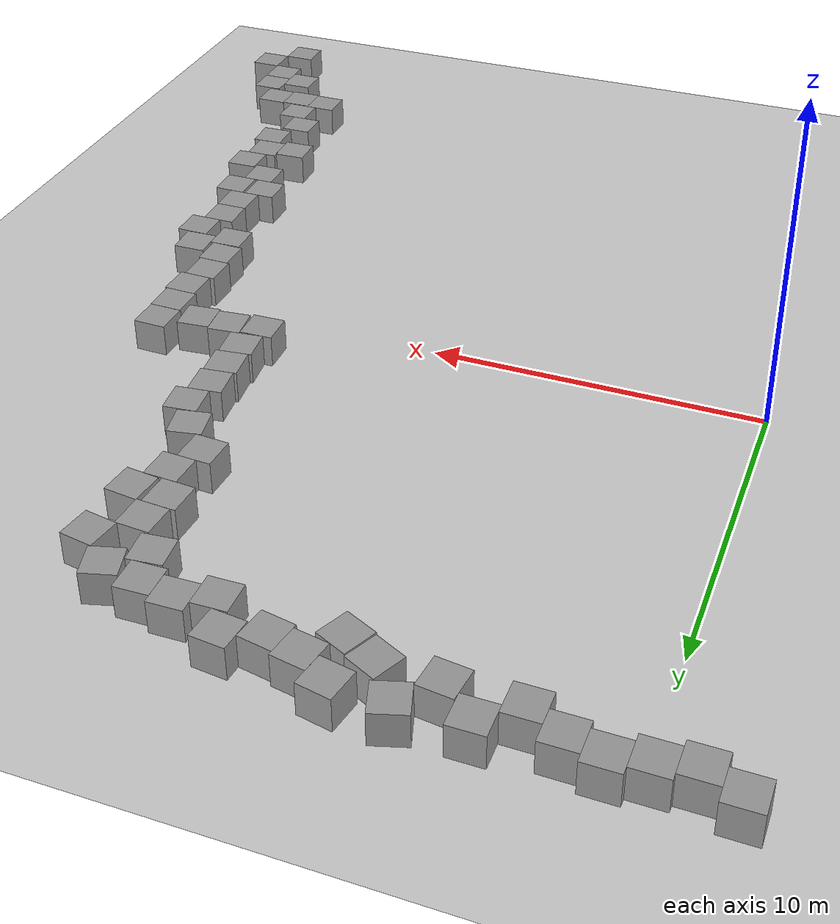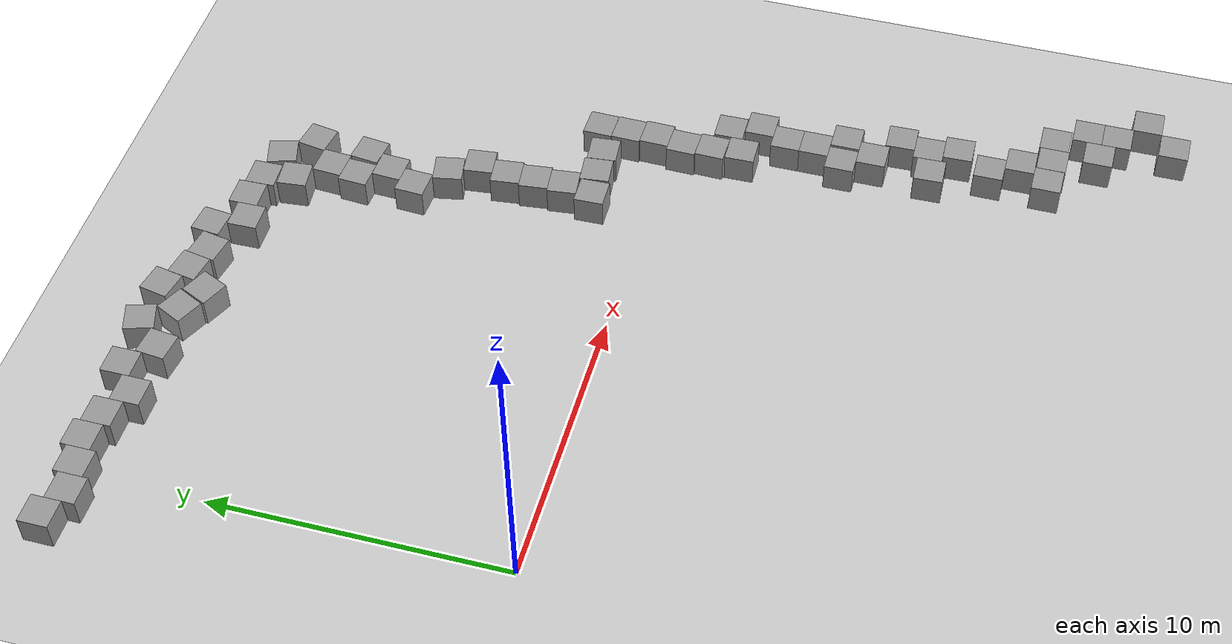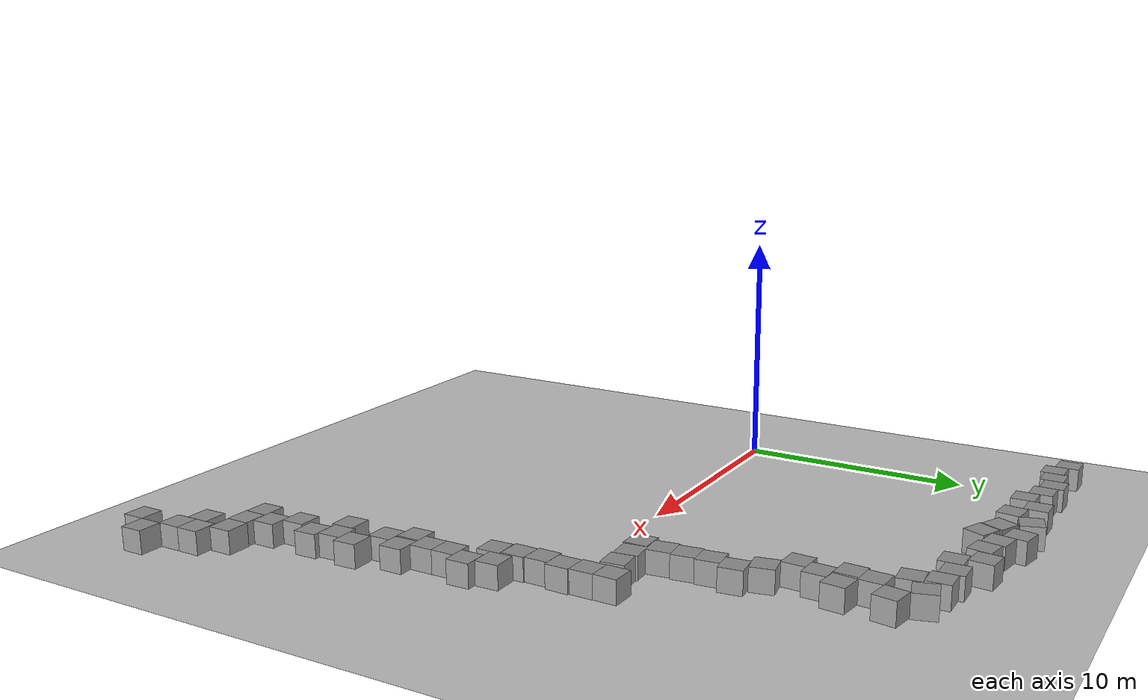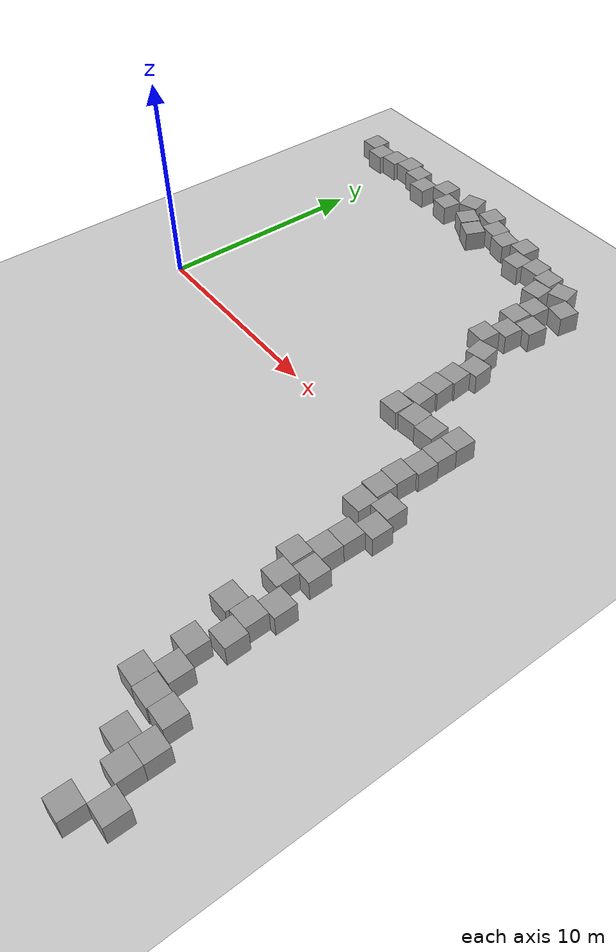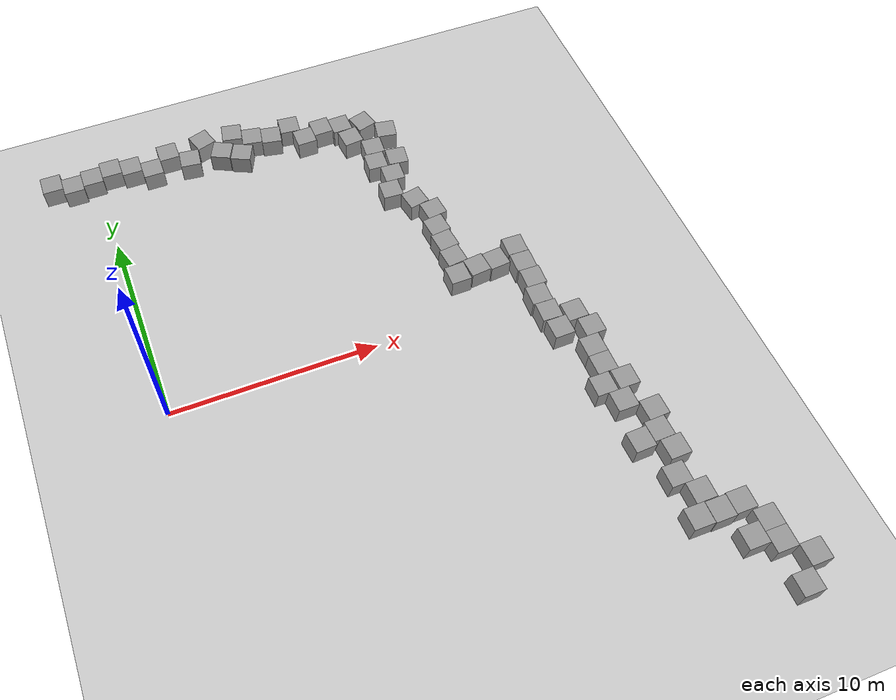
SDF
<sdf version="1.7">
 <world name="default">
  <model name="ground_plane">
   <static>1</static>
   <link name="link">
    <collision name="collision">
     <geometry><plane><normal>0 0 1</normal><size>100 100</size></plane></geometry>
     <surface>
      <contact><collide_bitmask>65535</collide_bitmask></contact>
      <friction><ode><mu>100</mu><mu2>50</mu2></ode></friction>
     </surface>
    </collision>
    <visual name="visual">
     <cast_shadows>0</cast_shadows>
     <geometry><plane><normal>0 0 1</normal><size>100 100</size></plane></geometry>
     <material>
      <script><uri>file://media/materials/scripts/gazebo.material</uri><name>Gazebo/Grey</name></script>
     </material>
    </visual>
   </link>
  </model>
  <model name="unit_box">
   <pose>8.14879 13.7403 0.5 0 0 -0.179137</pose>
   <link name="link">
    <inertial>
     <mass>1</mass>
     <inertia>
      <ixx>0.166667</ixx>
      <ixy>0</ixy>
      <ixz>0</ixz>
      <iyy>0.166667</iyy>
      <iyz>0</iyz>
      <izz>0.166667</izz>
     </inertia>
    </inertial>
    <collision name="collision"><geometry><box><size>1 1 1</size></box></geometry></collision>
    <visual name="visual">
     <geometry><box><size>1 1 1</size></box></geometry>
     <material>
      <script><name>Gazebo/Grey</name><uri>file://media/materials/scripts/gazebo.material</uri></script>
     </material>
    </visual>
   </link>
  </model>
  <model name="unit_box_clone">
   <pose>7.24066 14.3428 0.5 0 0 -0.192136</pose>
   <link name="link">
    <inertial>
     <mass>1</mass>
     <inertia>
      <ixx>0.166667</ixx>
      <ixy>0</ixy>
      <ixz>0</ixz>
      <iyy>0.166667</iyy>
      <iyz>0</iyz>
      <izz>0.166667</izz>
     </inertia>
    </inertial>
    <collision name="collision"><geometry><box><size>1 1 1</size></box></geometry></collision>
    <visual name="visual">
     <geometry><box><size>1 1 1</size></box></geometry>
     <material>
      <script><name>Gazebo/Grey</name><uri>file://media/materials/scripts/gazebo.material</uri></script>
     </material>
    </visual>
   </link>
  </model>
  <model name="unit_box_clone_0">
   <pose>7.3663 12.8762 0.5 0 0 -0.431474</pose>
   <link name="link">
    <inertial>
     <mass>1</mass>
     <inertia>
      <ixx>0.166667</ixx>
      <ixy>0</ixy>
      <ixz>0</ixz>
      <iyy>0.166667</iyy>
      <iyz>0</iyz>
      <izz>0.166667</izz>
     </inertia>
    </inertial>
    <collision name="collision"><geometry><box><size>1 1 1</size></box></geometry></collision>
    <visual name="visual">
     <geometry><box><size>1 1 1</size></box></geometry>
     <material>
      <script><name>Gazebo/Grey</name><uri>file://media/materials/scripts/gazebo.material</uri></script>
     </material>
    </visual>
   </link>
  </model>
  <model name="unit_box_clone_1">
   <pose>6.44568 13.3625 0.499996 -7e-06 0 -0.446602</pose>
   <link name="link">
    <inertial>
     <mass>1</mass>
     <inertia>
      <ixx>0.166667</ixx>
      <ixy>0</ixy>
      <ixz>0</ixz>
      <iyy>0.166667</iyy>
      <iyz>0</iyz>
      <izz>0.166667</izz>
     </inertia>
    </inertial>
    <collision name="collision"><geometry><box><size>1 1 1</size></box></geometry></collision>
    <visual name="visual">
     <geometry><box><size>1 1 1</size></box></geometry>
     <material>
      <script><name>Gazebo/Grey</name><uri>file://media/materials/scripts/gazebo.material</uri></script>
     </material>
    </visual>
   </link>
  </model>
  <model name="unit_box_clone_2">
   <pose>5.66448 14.4058 0.5 0 -0 0.299533</pose>
   <link name="link">
    <inertial>
     <mass>1</mass>
     <inertia>
      <ixx>0.166667</ixx>
      <ixy>0</ixy>
      <ixz>0</ixz>
      <iyy>0.166667</iyy>
      <iyz>0</iyz>
      <izz>0.166667</izz>
     </inertia>
    </inertial>
    <collision name="collision"><geometry><box><size>1 1 1</size></box></geometry></collision>
    <visual name="visual">
     <geometry><box><size>1 1 1</size></box></geometry>
     <material>
      <script><name>Gazebo/Grey</name><uri>file://media/materials/scripts/gazebo.material</uri></script>
     </material>
    </visual>
   </link>
  </model>
  <model name="unit_box_clone_3">
   <pose>3.79278 14.2378 0.5 0 -0 -0.002543</pose>
   <link name="link">
    <inertial>
     <mass>1</mass>
     <inertia>
      <ixx>0.166667</ixx>
      <ixy>0</ixy>
      <ixz>0</ixz>
      <iyy>0.166667</iyy>
      <iyz>0</iyz>
      <izz>0.166667</izz>
     </inertia>
    </inertial>
    <collision name="collision"><geometry><box><size>1 1 1</size></box></geometry></collision>
    <visual name="visual">
     <geometry><box><size>1 1 1</size></box></geometry>
     <material>
      <script><name>Gazebo/Grey</name><uri>file://media/materials/scripts/gazebo.material</uri></script>
     </material>
    </visual>
   </link>
  </model>
  <model name="unit_box_clone_4">
   <pose>4.75678 13.4144 0.499995 1e-05 -0 -0.118159</pose>
   <link name="link">
    <inertial>
     <mass>1</mass>
     <inertia>
      <ixx>0.166667</ixx>
      <ixy>0</ixy>
      <ixz>0</ixz>
      <iyy>0.166667</iyy>
      <iyz>0</iyz>
      <izz>0.166667</izz>
     </inertia>
    </inertial>
    <collision name="collision"><geometry><box><size>1 1 1</size></box></geometry></collision>
    <visual name="visual">
     <geometry><box><size>1 1 1</size></box></geometry>
     <material>
      <script><name>Gazebo/Grey</name><uri>file://media/materials/scripts/gazebo.material</uri></script>
     </material>
    </visual>
   </link>
  </model>
  <model name="unit_box_clone_5">
   <pose>1.79217 13.9851 0.5 -0 -0 -0.006324</pose>
   <link name="link">
    <inertial>
     <mass>1</mass>
     <inertia>
      <ixx>0.166667</ixx>
      <ixy>0</ixy>
      <ixz>0</ixz>
      <iyy>0.166667</iyy>
      <iyz>0</iyz>
      <izz>0.166667</izz>
     </inertia>
    </inertial>
    <collision name="collision"><geometry><box><size>1 1 1</size></box></geometry></collision>
    <visual name="visual">
     <geometry><box><size>1 1 1</size></box></geometry>
     <material>
      <script><name>Gazebo/Grey</name><uri>file://media/materials/scripts/gazebo.material</uri></script>
     </material>
    </visual>
   </link>
  </model>
  <model name="unit_box_clone_6">
   <pose>2.78953 13.4697 0.5 0 -0 -0.005146</pose>
   <link name="link">
    <inertial>
     <mass>1</mass>
     <inertia>
      <ixx>0.166667</ixx>
      <ixy>0</ixy>
      <ixz>0</ixz>
      <iyy>0.166667</iyy>
      <iyz>0</iyz>
      <izz>0.166667</izz>
     </inertia>
    </inertial>
    <collision name="collision"><geometry><box><size>1 1 1</size></box></geometry></collision>
    <visual name="visual">
     <geometry><box><size>1 1 1</size></box></geometry>
     <material>
      <script><name>Gazebo/Grey</name><uri>file://media/materials/scripts/gazebo.material</uri></script>
     </material>
    </visual>
   </link>
  </model>
  <model name="unit_box_clone_7">
   <pose>0.793579 14.2116 0.5 0 0 -0.006333</pose>
   <link name="link">
    <inertial>
     <mass>1</mass>
     <inertia>
      <ixx>0.166667</ixx>
      <ixy>0</ixy>
      <ixz>0</ixz>
      <iyy>0.166667</iyy>
      <iyz>0</iyz>
      <izz>0.166667</izz>
     </inertia>
    </inertial>
    <collision name="collision"><geometry><box><size>1 1 1</size></box></geometry></collision>
    <visual name="visual">
     <geometry><box><size>1 1 1</size></box></geometry>
     <material>
      <script><name>Gazebo/Grey</name><uri>file://media/materials/scripts/gazebo.material</uri></script>
     </material>
    </visual>
   </link>
  </model>
  <model name="unit_box_clone_8">
   <pose>-0.207819 13.9965 0.499995 -1e-05 -0 -0.006358</pose>
   <link name="link">
    <inertial>
     <mass>1</mass>
     <inertia>
      <ixx>0.166667</ixx>
      <ixy>0</ixy>
      <ixz>0</ixz>
      <iyy>0.166667</iyy>
      <iyz>0</iyz>
      <izz>0.166667</izz>
     </inertia>
    </inertial>
    <collision name="collision"><geometry><box><size>1 1 1</size></box></geometry></collision>
    <visual name="visual">
     <geometry><box><size>1 1 1</size></box></geometry>
     <material>
      <script><name>Gazebo/Grey</name><uri>file://media/materials/scripts/gazebo.material</uri></script>
     </material>
    </visual>
   </link>
  </model>
  <model name="unit_box_clone_9">
   <pose>-1.20904 13.8093 0.5 0 0 -0.006381</pose>
   <link name="link">
    <inertial>
     <mass>1</mass>
     <inertia>
      <ixx>0.166667</ixx>
      <ixy>0</ixy>
      <ixz>0</ixz>
      <iyy>0.166667</iyy>
      <iyz>0</iyz>
      <izz>0.166667</izz>
     </inertia>
    </inertial>
    <collision name="collision"><geometry><box><size>1 1 1</size></box></geometry></collision>
    <visual name="visual">
     <geometry><box><size>1 1 1</size></box></geometry>
     <material>
      <script><name>Gazebo/Grey</name><uri>file://media/materials/scripts/gazebo.material</uri></script>
     </material>
    </visual>
   </link>
  </model>
  <model name="unit_box_clone_10">
   <pose>-2.20641 14.2267 0.5 -0 -0 -0.006532</pose>
   <link name="link">
    <inertial>
     <mass>1</mass>
     <inertia>
      <ixx>0.166667</ixx>
      <ixy>0</ixy>
      <ixz>0</ixz>
      <iyy>0.166667</iyy>
      <iyz>0</iyz>
      <izz>0.166667</izz>
     </inertia>
    </inertial>
    <collision name="collision"><geometry><box><size>1 1 1</size></box></geometry></collision>
    <visual name="visual">
     <geometry><box><size>1 1 1</size></box></geometry>
     <material>
      <script><name>Gazebo/Grey</name><uri>file://media/materials/scripts/gazebo.material</uri></script>
     </material>
    </visual>
   </link>
  </model>
  <model name="unit_box_clone_24">
   <pose>9.11352 13.4557 0.499995 1e-05 0 -0.179137</pose>
   <link name="link">
    <inertial>
     <mass>1</mass>
     <inertia>
      <ixx>0.166667</ixx>
      <ixy>0</ixy>
      <ixz>0</ixz>
      <iyy>0.166667</iyy>
      <iyz>0</iyz>
      <izz>0.166667</izz>
     </inertia>
    </inertial>
    <collision name="collision"><geometry><box><size>1 1 1</size></box></geometry></collision>
    <visual name="visual">
     <geometry><box><size>1 1 1</size></box></geometry>
     <material>
      <script><name>Gazebo/Grey</name><uri>file://media/materials/scripts/gazebo.material</uri></script>
     </material>
    </visual>
   </link>
  </model>
  <model name="unit_box_clone_25">
   <pose>10.1901 13.7892 0.5 0 -0 -0.101922</pose>
   <link name="link">
    <inertial>
     <mass>1</mass>
     <inertia>
      <ixx>0.166667</ixx>
      <ixy>0</ixy>
      <ixz>0</ixz>
      <iyy>0.166667</iyy>
      <iyz>0</iyz>
      <izz>0.166667</izz>
     </inertia>
    </inertial>
    <collision name="collision"><geometry><box><size>1 1 1</size></box></geometry></collision>
    <visual name="visual">
     <geometry><box><size>1 1 1</size></box></geometry>
     <material>
      <script><name>Gazebo/Grey</name><uri>file://media/materials/scripts/gazebo.material</uri></script>
     </material>
    </visual>
   </link>
  </model>
  <model name="unit_box_clone_26">
   <pose>10.7298 12.742 0.5 0 -0 0.017382</pose>
   <link name="link">
    <inertial>
     <mass>1</mass>
     <inertia>
      <ixx>0.166667</ixx>
      <ixy>0</ixy>
      <ixz>0</ixz>
      <iyy>0.166667</iyy>
      <iyz>0</iyz>
      <izz>0.166667</izz>
     </inertia>
    </inertial>
    <collision name="collision"><geometry><box><size>1 1 1</size></box></geometry></collision>
    <visual name="visual">
     <geometry><box><size>1 1 1</size></box></geometry>
     <material>
      <script><name>Gazebo/Grey</name><uri>file://media/materials/scripts/gazebo.material</uri></script>
     </material>
    </visual>
   </link>
  </model>
  <model name="unit_box_clone_27">
   <pose>12.7296 12.8945 0.5 0 -0 0.021451</pose>
   <link name="link">
    <inertial>
     <mass>1</mass>
     <inertia>
      <ixx>0.166667</ixx>
      <ixy>0</ixy>
      <ixz>0</ixz>
      <iyy>0.166667</iyy>
      <iyz>0</iyz>
      <izz>0.166667</izz>
     </inertia>
    </inertial>
    <collision name="collision"><geometry><box><size>1 1 1</size></box></geometry></collision>
    <visual name="visual">
     <geometry><box><size>1 1 1</size></box></geometry>
     <material>
      <script><name>Gazebo/Grey</name><uri>file://media/materials/scripts/gazebo.material</uri></script>
     </material>
    </visual>
   </link>
  </model>
  <model name="unit_box_clone_28">
   <pose>11.724 13.0861 0.5 0 -0 0.017232</pose>
   <link name="link">
    <inertial>
     <mass>1</mass>
     <inertia>
      <ixx>0.166667</ixx>
      <ixy>0</ixy>
      <ixz>0</ixz>
      <iyy>0.166667</iyy>
      <iyz>0</iyz>
      <izz>0.166667</izz>
     </inertia>
    </inertial>
    <collision name="collision"><geometry><box><size>1 1 1</size></box></geometry></collision>
    <visual name="visual">
     <geometry><box><size>1 1 1</size></box></geometry>
     <material>
      <script><name>Gazebo/Grey</name><uri>file://media/materials/scripts/gazebo.material</uri></script>
     </material>
    </visual>
   </link>
  </model>
  <model name="unit_box_clone_29">
   <pose>12.966 11.8772 0.5 0 -0 0.094128</pose>
   <link name="link">
    <inertial>
     <mass>1</mass>
     <inertia>
      <ixx>0.166667</ixx>
      <ixy>0</ixy>
      <ixz>0</ixz>
      <iyy>0.166667</iyy>
      <iyz>0</iyz>
      <izz>0.166667</izz>
     </inertia>
    </inertial>
    <collision name="collision"><geometry><box><size>1 1 1</size></box></geometry></collision>
    <visual name="visual">
     <geometry><box><size>1 1 1</size></box></geometry>
     <material>
      <script><name>Gazebo/Grey</name><uri>file://media/materials/scripts/gazebo.material</uri></script>
     </material>
    </visual>
   </link>
  </model>
  <model name="unit_box_clone_30">
   <pose>13.8902 12.6714 0.5 0 -0 0.271597</pose>
   <link name="link">
    <inertial>
     <mass>1</mass>
     <inertia>
      <ixx>0.166667</ixx>
      <ixy>0</ixy>
      <ixz>0</ixz>
      <iyy>0.166667</iyy>
      <iyz>0</iyz>
      <izz>0.166667</izz>
     </inertia>
    </inertial>
    <collision name="collision"><geometry><box><size>1 1 1</size></box></geometry></collision>
    <visual name="visual">
     <geometry><box><size>1 1 1</size></box></geometry>
     <material>
      <script><name>Gazebo/Grey</name><uri>file://media/materials/scripts/gazebo.material</uri></script>
     </material>
    </visual>
   </link>
  </model>
  <model name="unit_box_clone_31">
   <pose>13.6101 9.84769 0.499995 0 1e-05 -0.060771</pose>
   <link name="link">
    <inertial>
     <mass>1</mass>
     <inertia>
      <ixx>0.166667</ixx>
      <ixy>0</ixy>
      <ixz>0</ixz>
      <iyy>0.166667</iyy>
      <iyz>0</iyz>
      <izz>0.166667</izz>
     </inertia>
    </inertial>
    <collision name="collision"><geometry><box><size>1 1 1</size></box></geometry></collision>
    <visual name="visual">
     <geometry><box><size>1 1 1</size></box></geometry>
     <material>
      <script><name>Gazebo/Grey</name><uri>file://media/materials/scripts/gazebo.material</uri></script>
     </material>
    </visual>
   </link>
  </model>
  <model name="unit_box_clone_32">
   <pose>14.8438 11.7274 0.5 0 0 -0.167872</pose>
   <link name="link">
    <inertial>
     <mass>1</mass>
     <inertia>
      <ixx>0.166667</ixx>
      <ixy>0</ixy>
      <ixz>0</ixz>
      <iyy>0.166667</iyy>
      <iyz>0</iyz>
      <izz>0.166667</izz>
     </inertia>
    </inertial>
    <collision name="collision"><geometry><box><size>1 1 1</size></box></geometry></collision>
    <visual name="visual">
     <geometry><box><size>1 1 1</size></box></geometry>
     <material>
      <script><name>Gazebo/Grey</name><uri>file://media/materials/scripts/gazebo.material</uri></script>
     </material>
    </visual>
   </link>
  </model>
  <model name="unit_box_clone_33">
   <pose>14.1345 8.81455 0.5 0 -0 -0.053428</pose>
   <link name="link">
    <inertial>
     <mass>1</mass>
     <inertia>
      <ixx>0.166667</ixx>
      <ixy>0</ixy>
      <ixz>0</ixz>
      <iyy>0.166667</iyy>
      <iyz>0</iyz>
      <izz>0.166667</izz>
     </inertia>
    </inertial>
    <collision name="collision"><geometry><box><size>1 1 1</size></box></geometry></collision>
    <visual name="visual">
     <geometry><box><size>1 1 1</size></box></geometry>
     <material>
      <script><name>Gazebo/Grey</name><uri>file://media/materials/scripts/gazebo.material</uri></script>
     </material>
    </visual>
   </link>
  </model>
  <model name="unit_box_clone_34">
   <pose>13.8112 10.8391 0.5 0 0 -0.065775</pose>
   <link name="link">
    <inertial>
     <mass>1</mass>
     <inertia>
      <ixx>0.166667</ixx>
      <ixy>0</ixy>
      <ixz>0</ixz>
      <iyy>0.166667</iyy>
      <iyz>0</iyz>
      <izz>0.166667</izz>
     </inertia>
    </inertial>
    <collision name="collision"><geometry><box><size>1 1 1</size></box></geometry></collision>
    <visual name="visual">
     <geometry><box><size>1 1 1</size></box></geometry>
     <material>
      <script><name>Gazebo/Grey</name><uri>file://media/materials/scripts/gazebo.material</uri></script>
     </material>
    </visual>
   </link>
  </model>
  <model name="unit_box_clone_35">
   <pose>14.7219 9.78393 0.499995 0 1e-05 -0.11977</pose>
   <link name="link">
    <inertial>
     <mass>1</mass>
     <inertia>
      <ixx>0.166667</ixx>
      <ixy>0</ixy>
      <ixz>0</ixz>
      <iyy>0.166667</iyy>
      <iyz>0</iyz>
      <izz>0.166667</izz>
     </inertia>
    </inertial>
    <collision name="collision"><geometry><box><size>1 1 1</size></box></geometry></collision>
    <visual name="visual">
     <geometry><box><size>1 1 1</size></box></geometry>
     <material>
      <script><name>Gazebo/Grey</name><uri>file://media/materials/scripts/gazebo.material</uri></script>
     </material>
    </visual>
   </link>
  </model>
  <model name="unit_box_clone_36">
   <pose>13.665 7.83823 0.5 0 0 -0.053429</pose>
   <link name="link">
    <inertial>
     <mass>1</mass>
     <inertia>
      <ixx>0.166667</ixx>
      <ixy>0</ixy>
      <ixz>0</ixz>
      <iyy>0.166667</iyy>
      <iyz>0</iyz>
      <izz>0.166667</izz>
     </inertia>
    </inertial>
    <collision name="collision"><geometry><box><size>1 1 1</size></box></geometry></collision>
    <visual name="visual">
     <geometry><box><size>1 1 1</size></box></geometry>
     <material>
      <script><name>Gazebo/Grey</name><uri>file://media/materials/scripts/gazebo.material</uri></script>
     </material>
    </visual>
   </link>
  </model>
  <model name="unit_box_clone_37">
   <pose>14.5828 6.88678 0.5 0 -0 0.184765</pose>
   <link name="link">
    <inertial>
     <mass>1</mass>
     <inertia>
      <ixx>0.166667</ixx>
      <ixy>0</ixy>
      <ixz>0</ixz>
      <iyy>0.166667</iyy>
      <iyz>0</iyz>
      <izz>0.166667</izz>
     </inertia>
    </inertial>
    <collision name="collision"><geometry><box><size>1 1 1</size></box></geometry></collision>
    <visual name="visual">
     <geometry><box><size>1 1 1</size></box></geometry>
     <material>
      <script><name>Gazebo/Grey</name><uri>file://media/materials/scripts/gazebo.material</uri></script>
     </material>
    </visual>
   </link>
  </model>
  <model name="unit_box_clone_38">
   <pose>15.1783 5.9445 0.499995 0 -1e-05 0.110683</pose>
   <link name="link">
    <inertial>
     <mass>1</mass>
     <inertia>
      <ixx>0.166667</ixx>
      <ixy>0</ixy>
      <ixz>0</ixz>
      <iyy>0.166667</iyy>
      <iyz>0</iyz>
      <izz>0.166667</izz>
     </inertia>
    </inertial>
    <collision name="collision"><geometry><box><size>1 1 1</size></box></geometry></collision>
    <visual name="visual">
     <geometry><box><size>1 1 1</size></box></geometry>
     <material>
      <script><name>Gazebo/Grey</name><uri>file://media/materials/scripts/gazebo.material</uri></script>
     </material>
    </visual>
   </link>
  </model>
  <model name="unit_box_clone_39">
   <pose>14.9446 4.91207 0.5 0 -0 0.10889</pose>
   <link name="link">
    <inertial>
     <mass>1</mass>
     <inertia>
      <ixx>0.166667</ixx>
      <ixy>0</ixy>
      <ixz>0</ixz>
      <iyy>0.166667</iyy>
      <iyz>0</iyz>
      <izz>0.166667</izz>
     </inertia>
    </inertial>
    <collision name="collision"><geometry><box><size>1 1 1</size></box></geometry></collision>
    <visual name="visual">
     <geometry><box><size>1 1 1</size></box></geometry>
     <material>
      <script><name>Gazebo/Grey</name><uri>file://media/materials/scripts/gazebo.material</uri></script>
     </material>
    </visual>
   </link>
  </model>
  <model name="unit_box_clone_40">
   <pose>14.9689 3.90877 0.499995 0 -1e-05 0.10889</pose>
   <link name="link">
    <inertial>
     <mass>1</mass>
     <inertia>
      <ixx>0.166667</ixx>
      <ixy>0</ixy>
      <ixz>0</ixz>
      <iyy>0.166667</iyy>
      <iyz>0</iyz>
      <izz>0.166667</izz>
     </inertia>
    </inertial>
    <collision name="collision"><geometry><box><size>1 1 1</size></box></geometry></collision>
    <visual name="visual">
     <geometry><box><size>1 1 1</size></box></geometry>
     <material>
      <script><name>Gazebo/Grey</name><uri>file://media/materials/scripts/gazebo.material</uri></script>
     </material>
    </visual>
   </link>
  </model>
  <model name="unit_box_clone_41">
   <pose>14.9918 2.90528 0.5 0 -0 0.108931</pose>
   <link name="link">
    <inertial>
     <mass>1</mass>
     <inertia>
      <ixx>0.166667</ixx>
      <ixy>0</ixy>
      <ixz>0</ixz>
      <iyy>0.166667</iyy>
      <iyz>0</iyz>
      <izz>0.166667</izz>
     </inertia>
    </inertial>
    <collision name="collision"><geometry><box><size>1 1 1</size></box></geometry></collision>
    <visual name="visual">
     <geometry><box><size>1 1 1</size></box></geometry>
     <material>
      <script><name>Gazebo/Grey</name><uri>file://media/materials/scripts/gazebo.material</uri></script>
     </material>
    </visual>
   </link>
  </model>
  <model name="unit_box_clone_42">
   <pose>14.7959 1.85876 0.5 0 -0 0.020394</pose>
   <link name="link">
    <inertial>
     <mass>1</mass>
     <inertia>
      <ixx>0.166667</ixx>
      <ixy>0</ixy>
      <ixz>0</ixz>
      <iyy>0.166667</iyy>
      <iyz>0</iyz>
      <izz>0.166667</izz>
     </inertia>
    </inertial>
    <collision name="collision"><geometry><box><size>1 1 1</size></box></geometry></collision>
    <visual name="visual">
     <geometry><box><size>1 1 1</size></box></geometry>
     <material>
      <script><name>Gazebo/Grey</name><uri>file://media/materials/scripts/gazebo.material</uri></script>
     </material>
    </visual>
   </link>
  </model>
  <model name="unit_box_clone_43">
   <pose>16.8387 2.00716 0.5 0 -0 0.09071</pose>
   <link name="link">
    <inertial>
     <mass>1</mass>
     <inertia>
      <ixx>0.166667</ixx>
      <ixy>0</ixy>
      <ixz>0</ixz>
      <iyy>0.166667</iyy>
      <iyz>0</iyz>
      <izz>0.166667</izz>
     </inertia>
    </inertial>
    <collision name="collision"><geometry><box><size>1 1 1</size></box></geometry></collision>
    <visual name="visual">
     <geometry><box><size>1 1 1</size></box></geometry>
     <material>
      <script><name>Gazebo/Grey</name><uri>file://media/materials/scripts/gazebo.material</uri></script>
     </material>
    </visual>
   </link>
  </model>
  <model name="unit_box_clone_44">
   <pose>15.8323 1.98629 0.5 0 -0 0.099098</pose>
   <link name="link">
    <inertial>
     <mass>1</mass>
     <inertia>
      <ixx>0.166667</ixx>
      <ixy>0</ixy>
      <ixz>0</ixz>
      <iyy>0.166667</iyy>
      <iyz>0</iyz>
      <izz>0.166667</izz>
     </inertia>
    </inertial>
    <collision name="collision"><geometry><box><size>1 1 1</size></box></geometry></collision>
    <visual name="visual">
     <geometry><box><size>1 1 1</size></box></geometry>
     <material>
      <script><name>Gazebo/Grey</name><uri>file://media/materials/scripts/gazebo.material</uri></script>
     </material>
    </visual>
   </link>
  </model>
  <model name="unit_box_clone_45">
   <pose>18.0081 2.42665 0.5 0 0 -0.026177</pose>
   <link name="link">
    <inertial>
     <mass>1</mass>
     <inertia>
      <ixx>0.166667</ixx>
      <ixy>0</ixy>
      <ixz>0</ixz>
      <iyy>0.166667</iyy>
      <iyz>0</iyz>
      <izz>0.166667</izz>
     </inertia>
    </inertial>
    <collision name="collision"><geometry><box><size>1 1 1</size></box></geometry></collision>
    <visual name="visual">
     <geometry><box><size>1 1 1</size></box></geometry>
     <material>
      <script><name>Gazebo/Grey</name><uri>file://media/materials/scripts/gazebo.material</uri></script>
     </material>
    </visual>
   </link>
  </model>
  <model name="unit_box_clone_46">
   <pose>18.0055 1.42428 0.5 0 -0 -0.025157</pose>
   <link name="link">
    <inertial>
     <mass>1</mass>
     <inertia>
      <ixx>0.166667</ixx>
      <ixy>0</ixy>
      <ixz>0</ixz>
      <iyy>0.166667</iyy>
      <iyz>0</iyz>
      <izz>0.166667</izz>
     </inertia>
    </inertial>
    <collision name="collision"><geometry><box><size>1 1 1</size></box></geometry></collision>
    <visual name="visual">
     <geometry><box><size>1 1 1</size></box></geometry>
     <material>
      <script><name>Gazebo/Grey</name><uri>file://media/materials/scripts/gazebo.material</uri></script>
     </material>
    </visual>
   </link>
  </model>
  <model name="unit_box_clone_47">
   <pose>18.0513 0.422691 0.5 0 -0 -0.025369</pose>
   <link name="link">
    <inertial>
     <mass>1</mass>
     <inertia>
      <ixx>0.166667</ixx>
      <ixy>0</ixy>
      <ixz>0</ixz>
      <iyy>0.166667</iyy>
      <iyz>0</iyz>
      <izz>0.166667</izz>
     </inertia>
    </inertial>
    <collision name="collision"><geometry><box><size>1 1 1</size></box></geometry></collision>
    <visual name="visual">
     <geometry><box><size>1 1 1</size></box></geometry>
     <material>
      <script><name>Gazebo/Grey</name><uri>file://media/materials/scripts/gazebo.material</uri></script>
     </material>
    </visual>
   </link>
  </model>
  <model name="unit_box_clone_48">
   <pose>18.0494 -2.59629 0.5 0 -0 0.017199</pose>
   <link name="link">
    <inertial>
     <mass>1</mass>
     <inertia>
      <ixx>0.166667</ixx>
      <ixy>0</ixy>
      <ixz>0</ixz>
      <iyy>0.166667</iyy>
      <iyz>0</iyz>
      <izz>0.166667</izz>
     </inertia>
    </inertial>
    <collision name="collision"><geometry><box><size>1 1 1</size></box></geometry></collision>
    <visual name="visual">
     <geometry><box><size>1 1 1</size></box></geometry>
     <material>
      <script><name>Gazebo/Grey</name><uri>file://media/materials/scripts/gazebo.material</uri></script>
     </material>
    </visual>
   </link>
  </model>
  <model name="unit_box_clone_49">
   <pose>17.8873 -0.574183 0.5 0 0 -0.025239</pose>
   <link name="link">
    <inertial>
     <mass>1</mass>
     <inertia>
      <ixx>0.166667</ixx>
      <ixy>0</ixy>
      <ixz>0</ixz>
      <iyy>0.166667</iyy>
      <iyz>0</iyz>
      <izz>0.166667</izz>
     </inertia>
    </inertial>
    <collision name="collision"><geometry><box><size>1 1 1</size></box></geometry></collision>
    <visual name="visual">
     <geometry><box><size>1 1 1</size></box></geometry>
     <material>
      <script><name>Gazebo/Grey</name><uri>file://media/materials/scripts/gazebo.material</uri></script>
     </material>
    </visual>
   </link>
  </model>
  <model name="unit_box_clone_50">
   <pose>17.9375 -1.57696 0.5 -0 -0 -0.024718</pose>
   <link name="link">
    <inertial>
     <mass>1</mass>
     <inertia>
      <ixx>0.166667</ixx>
      <ixy>0</ixy>
      <ixz>0</ixz>
      <iyy>0.166667</iyy>
      <iyz>0</iyz>
      <izz>0.166667</izz>
     </inertia>
    </inertial>
    <collision name="collision"><geometry><box><size>1 1 1</size></box></geometry></collision>
    <visual name="visual">
     <geometry><box><size>1 1 1</size></box></geometry>
     <material>
      <script><name>Gazebo/Grey</name><uri>file://media/materials/scripts/gazebo.material</uri></script>
     </material>
    </visual>
   </link>
  </model>
  <model name="unit_box_clone_51">
   <pose>19.0395 -1.9857 0.5 0 -0 0.017213</pose>
   <link name="link">
    <inertial>
     <mass>1</mass>
     <inertia>
      <ixx>0.166667</ixx>
      <ixy>0</ixy>
      <ixz>0</ixz>
      <iyy>0.166667</iyy>
      <iyz>0</iyz>
      <izz>0.166667</izz>
     </inertia>
    </inertial>
    <collision name="collision"><geometry><box><size>1 1 1</size></box></geometry></collision>
    <visual name="visual">
     <geometry><box><size>1 1 1</size></box></geometry>
     <material>
      <script><name>Gazebo/Grey</name><uri>file://media/materials/scripts/gazebo.material</uri></script>
     </material>
    </visual>
   </link>
  </model>
  <model name="unit_box_clone_52">
   <pose>19.4313 -2.99999 0.5 -0 -0 -3e-06</pose>
   <link name="link">
    <inertial>
     <mass>1</mass>
     <inertia>
      <ixx>0.166667</ixx>
      <ixy>0</ixy>
      <ixz>0</ixz>
      <iyy>0.166667</iyy>
      <iyz>0</iyz>
      <izz>0.166667</izz>
     </inertia>
    </inertial>
    <collision name="collision"><geometry><box><size>1 1 1</size></box></geometry></collision>
    <visual name="visual">
     <geometry><box><size>1 1 1</size></box></geometry>
     <material>
      <script><name>Gazebo/Grey</name><uri>file://media/materials/scripts/gazebo.material</uri></script>
     </material>
    </visual>
   </link>
  </model>
  <model name="unit_box_clone_53">
   <pose>19 -4.99999 0.5 -0 -0 -0</pose>
   <link name="link">
    <inertial>
     <mass>1</mass>
     <inertia>
      <ixx>0.166667</ixx>
      <ixy>0</ixy>
      <ixz>0</ixz>
      <iyy>0.166667</iyy>
      <iyz>0</iyz>
      <izz>0.166667</izz>
     </inertia>
    </inertial>
    <collision name="collision"><geometry><box><size>1 1 1</size></box></geometry></collision>
    <visual name="visual">
     <geometry><box><size>1 1 1</size></box></geometry>
     <material>
      <script><name>Gazebo/Grey</name><uri>file://media/materials/scripts/gazebo.material</uri></script>
     </material>
    </visual>
   </link>
  </model>
  <model name="unit_box_clone_54">
   <pose>19 -7 0.5 -0 -0 -1.4e-05</pose>
   <link name="link">
    <inertial>
     <mass>1</mass>
     <inertia>
      <ixx>0.166667</ixx>
      <ixy>0</ixy>
      <ixz>0</ixz>
      <iyy>0.166667</iyy>
      <iyz>0</iyz>
      <izz>0.166667</izz>
     </inertia>
    </inertial>
    <collision name="collision"><geometry><box><size>1 1 1</size></box></geometry></collision>
    <visual name="visual">
     <geometry><box><size>1 1 1</size></box></geometry>
     <material>
      <script><name>Gazebo/Grey</name><uri>file://media/materials/scripts/gazebo.material</uri></script>
     </material>
    </visual>
   </link>
  </model>
  <model name="unit_box_clone_55">
   <pose>20.0491 -7.83142 0.5 0 -0 0.026992</pose>
   <link name="link">
    <inertial>
     <mass>1</mass>
     <inertia>
      <ixx>0.166667</ixx>
      <ixy>0</ixy>
      <ixz>0</ixz>
      <iyy>0.166667</iyy>
      <iyz>0</iyz>
      <izz>0.166667</izz>
     </inertia>
    </inertial>
    <collision name="collision"><geometry><box><size>1 1 1</size></box></geometry></collision>
    <visual name="visual">
     <geometry><box><size>1 1 1</size></box></geometry>
     <material>
      <script><name>Gazebo/Grey</name><uri>file://media/materials/scripts/gazebo.material</uri></script>
     </material>
    </visual>
   </link>
  </model>
  <model name="unit_box_clone_56">
   <pose>19.5784 -6 0.5 0 -0 0</pose>
   <link name="link">
    <inertial>
     <mass>1</mass>
     <inertia>
      <ixx>0.166667</ixx>
      <ixy>0</ixy>
      <ixz>0</ixz>
      <iyy>0.166667</iyy>
      <iyz>0</iyz>
      <izz>0.166667</izz>
     </inertia>
    </inertial>
    <collision name="collision"><geometry><box><size>1 1 1</size></box></geometry></collision>
    <visual name="visual">
     <geometry><box><size>1 1 1</size></box></geometry>
     <material>
      <script><name>Gazebo/Grey</name><uri>file://media/materials/scripts/gazebo.material</uri></script>
     </material>
    </visual>
   </link>
  </model>
  <model name="unit_box_clone_57">
   <pose>18.4904 -5.99999 0.5 0 0 -3e-06</pose>
   <link name="link">
    <inertial>
     <mass>1</mass>
     <inertia>
      <ixx>0.166667</ixx>
      <ixy>0</ixy>
      <ixz>0</ixz>
      <iyy>0.166667</iyy>
      <iyz>0</iyz>
      <izz>0.166667</izz>
     </inertia>
    </inertial>
    <collision name="collision"><geometry><box><size>1 1 1</size></box></geometry></collision>
    <visual name="visual">
     <geometry><box><size>1 1 1</size></box></geometry>
     <material>
      <script><name>Gazebo/Grey</name><uri>file://media/materials/scripts/gazebo.material</uri></script>
     </material>
    </visual>
   </link>
  </model>
  <model name="unit_box_clone_58">
   <pose>19 -3.99999 0.5 0 -0 0</pose>
   <link name="link">
    <inertial>
     <mass>1</mass>
     <inertia>
      <ixx>0.166667</ixx>
      <ixy>0</ixy>
      <ixz>0</ixz>
      <iyy>0.166667</iyy>
      <iyz>0</iyz>
      <izz>0.166667</izz>
     </inertia>
    </inertial>
    <collision name="collision"><geometry><box><size>1 1 1</size></box></geometry></collision>
    <visual name="visual">
     <geometry><box><size>1 1 1</size></box></geometry>
     <material>
      <script><name>Gazebo/Grey</name><uri>file://media/materials/scripts/gazebo.material</uri></script>
     </material>
    </visual>
   </link>
  </model>
  <model name="unit_box_clone_59">
   <pose>18.7599 -9.02657 0.5 0 -0 0.030815</pose>
   <link name="link">
    <inertial>
     <mass>1</mass>
     <inertia>
      <ixx>0.166667</ixx>
      <ixy>0</ixy>
      <ixz>0</ixz>
      <iyy>0.166667</iyy>
      <iyz>0</iyz>
      <izz>0.166667</izz>
     </inertia>
    </inertial>
    <collision name="collision"><geometry><box><size>1 1 1</size></box></geometry></collision>
    <visual name="visual">
     <geometry><box><size>1 1 1</size></box></geometry>
     <material>
      <script><name>Gazebo/Grey</name><uri>file://media/materials/scripts/gazebo.material</uri></script>
     </material>
    </visual>
   </link>
  </model>
  <model name="unit_box_clone_60">
   <pose>19.7566 -8.83976 0.5 0 -0 0.026811</pose>
   <link name="link">
    <inertial>
     <mass>1</mass>
     <inertia>
      <ixx>0.166667</ixx>
      <ixy>0</ixy>
      <ixz>0</ixz>
      <iyy>0.166667</iyy>
      <iyz>0</iyz>
      <izz>0.166667</izz>
     </inertia>
    </inertial>
    <collision name="collision"><geometry><box><size>1 1 1</size></box></geometry></collision>
    <visual name="visual">
     <geometry><box><size>1 1 1</size></box></geometry>
     <material>
      <script><name>Gazebo/Grey</name><uri>file://media/materials/scripts/gazebo.material</uri></script>
     </material>
    </visual>
   </link>
  </model>
  <model name="unit_box_clone_61">
   <pose>20.0078 -9.83453 0.5 0 -0 0.027054</pose>
   <link name="link">
    <inertial>
     <mass>1</mass>
     <inertia>
      <ixx>0.166667</ixx>
      <ixy>0</ixy>
      <ixz>0</ixz>
      <iyy>0.166667</iyy>
      <iyz>0</iyz>
      <izz>0.166667</izz>
     </inertia>
    </inertial>
    <collision name="collision"><geometry><box><size>1 1 1</size></box></geometry></collision>
    <visual name="visual">
     <geometry><box><size>1 1 1</size></box></geometry>
     <material>
      <script><name>Gazebo/Grey</name><uri>file://media/materials/scripts/gazebo.material</uri></script>
     </material>
    </visual>
   </link>
  </model>
  <model name="unit_box_clone_62">
   <pose>19.4133 -10.9971 0.5 0 -0 0.003019</pose>
   <link name="link">
    <inertial>
     <mass>1</mass>
     <inertia>
      <ixx>0.166667</ixx>
      <ixy>0</ixy>
      <ixz>0</ixz>
      <iyy>0.166667</iyy>
      <iyz>0</iyz>
      <izz>0.166667</izz>
     </inertia>
    </inertial>
    <collision name="collision"><geometry><box><size>1 1 1</size></box></geometry></collision>
    <visual name="visual">
     <geometry><box><size>1 1 1</size></box></geometry>
     <material>
      <script><name>Gazebo/Grey</name><uri>file://media/materials/scripts/gazebo.material</uri></script>
     </material>
    </visual>
   </link>
  </model>
  <model name="unit_box_clone_63">
   <pose>19.3311 -12.9961 0.5 0 0 -0.00436</pose>
   <link name="link">
    <inertial>
     <mass>1</mass>
     <inertia>
      <ixx>0.166667</ixx>
      <ixy>0</ixy>
      <ixz>0</ixz>
      <iyy>0.166667</iyy>
      <iyz>0</iyz>
      <izz>0.166667</izz>
     </inertia>
    </inertial>
    <collision name="collision"><geometry><box><size>1 1 1</size></box></geometry></collision>
    <visual name="visual">
     <geometry><box><size>1 1 1</size></box></geometry>
     <material>
      <script><name>Gazebo/Grey</name><uri>file://media/materials/scripts/gazebo.material</uri></script>
     </material>
    </visual>
   </link>
  </model>
  <model name="unit_box_clone_64">
   <pose>20.3333 -13.0255 0.5 0 0 -0.002439</pose>
   <link name="link">
    <inertial>
     <mass>1</mass>
     <inertia>
      <ixx>0.166667</ixx>
      <ixy>0</ixy>
      <ixz>0</ixz>
      <iyy>0.166667</iyy>
      <iyz>0</iyz>
      <izz>0.166667</izz>
     </inertia>
    </inertial>
    <collision name="collision"><geometry><box><size>1 1 1</size></box></geometry></collision>
    <visual name="visual">
     <geometry><box><size>1 1 1</size></box></geometry>
     <material>
      <script><name>Gazebo/Grey</name><uri>file://media/materials/scripts/gazebo.material</uri></script>
     </material>
    </visual>
   </link>
  </model>
  <model name="unit_box_clone_65">
   <pose>21.3334 -12.9878 0.5 0 -0 -0.002412</pose>
   <link name="link">
    <inertial>
     <mass>1</mass>
     <inertia>
      <ixx>0.166667</ixx>
      <ixy>0</ixy>
      <ixz>0</ixz>
      <iyy>0.166667</iyy>
      <iyz>0</iyz>
      <izz>0.166667</izz>
     </inertia>
    </inertial>
    <collision name="collision"><geometry><box><size>1 1 1</size></box></geometry></collision>
    <visual name="visual">
     <geometry><box><size>1 1 1</size></box></geometry>
     <material>
      <script><name>Gazebo/Grey</name><uri>file://media/materials/scripts/gazebo.material</uri></script>
     </material>
    </visual>
   </link>
  </model>
  <model name="unit_box_clone_66">
   <pose>20.0016 -11.9962 0.5 0 -0 0.001149</pose>
   <link name="link">
    <inertial>
     <mass>1</mass>
     <inertia>
      <ixx>0.166667</ixx>
      <ixy>0</ixy>
      <ixz>0</ixz>
      <iyy>0.166667</iyy>
      <iyz>0</iyz>
      <izz>0.166667</izz>
     </inertia>
    </inertial>
    <collision name="collision"><geometry><box><size>1 1 1</size></box></geometry></collision>
    <visual name="visual">
     <geometry><box><size>1 1 1</size></box></geometry>
     <material>
      <script><name>Gazebo/Grey</name><uri>file://media/materials/scripts/gazebo.material</uri></script>
     </material>
    </visual>
   </link>
  </model>
  <model name="unit_box_clone_67">
   <pose>21 -14.5273 0.5 0 0 -3e-06</pose>
   <link name="link">
    <inertial>
     <mass>1</mass>
     <inertia>
      <ixx>0.166667</ixx>
      <ixy>0</ixy>
      <ixz>0</ixz>
      <iyy>0.166667</iyy>
      <iyz>0</iyz>
      <izz>0.166667</izz>
     </inertia>
    </inertial>
    <collision name="collision"><geometry><box><size>1 1 1</size></box></geometry></collision>
    <visual name="visual">
     <geometry><box><size>1 1 1</size></box></geometry>
     <material>
      <script><name>Gazebo/Grey</name><uri>file://media/materials/scripts/gazebo.material</uri></script>
     </material>
    </visual>
   </link>
  </model>
  <model name="unit_box_clone_68">
   <pose>22 -14.0441 0.5 0 -0 7e-06</pose>
   <link name="link">
    <inertial>
     <mass>1</mass>
     <inertia>
      <ixx>0.166667</ixx>
      <ixy>0</ixy>
      <ixz>0</ixz>
      <iyy>0.166667</iyy>
      <iyz>0</iyz>
      <izz>0.166667</izz>
     </inertia>
    </inertial>
    <collision name="collision"><geometry><box><size>1 1 1</size></box></geometry></collision>
    <visual name="visual">
     <geometry><box><size>1 1 1</size></box></geometry>
     <material>
      <script><name>Gazebo/Grey</name><uri>file://media/materials/scripts/gazebo.material</uri></script>
     </material>
    </visual>
   </link>
  </model>
  <model name="unit_box_clone_69">
   <pose>22 -15.0441 0.5 0 0 -4e-06</pose>
   <link name="link">
    <inertial>
     <mass>1</mass>
     <inertia>
      <ixx>0.166667</ixx>
      <ixy>0</ixy>
      <ixz>0</ixz>
      <iyy>0.166667</iyy>
      <iyz>0</iyz>
      <izz>0.166667</izz>
     </inertia>
    </inertial>
    <collision name="collision"><geometry><box><size>1 1 1</size></box></geometry></collision>
    <visual name="visual">
     <geometry><box><size>1 1 1</size></box></geometry>
     <material>
      <script><name>Gazebo/Grey</name><uri>file://media/materials/scripts/gazebo.material</uri></script>
     </material>
    </visual>
   </link>
  </model>
  <model name="unit_box_clone_70">
   <pose>23 -16 0.5 -0 -0 -9e-06</pose>
   <link name="link">
    <inertial>
     <mass>1</mass>
     <inertia>
      <ixx>0.166667</ixx>
      <ixy>0</ixy>
      <ixz>0</ixz>
      <iyy>0.166667</iyy>
      <iyz>0</iyz>
      <izz>0.166667</izz>
     </inertia>
    </inertial>
    <collision name="collision"><geometry><box><size>1 1 1</size></box></geometry></collision>
    <visual name="visual">
     <geometry><box><size>1 1 1</size></box></geometry>
     <material>
      <script><name>Gazebo/Grey</name><uri>file://media/materials/scripts/gazebo.material</uri></script>
     </material>
    </visual>
   </link>
  </model>
  <model name="unit_box_clone_71">
   <pose>22 -17 0.5 0 -0 3e-06</pose>
   <link name="link">
    <inertial>
     <mass>1</mass>
     <inertia>
      <ixx>0.166667</ixx>
      <ixy>0</ixy>
      <ixz>0</ixz>
      <iyy>0.166667</iyy>
      <iyz>0</iyz>
      <izz>0.166667</izz>
     </inertia>
    </inertial>
    <collision name="collision"><geometry><box><size>1 1 1</size></box></geometry></collision>
    <visual name="visual">
     <geometry><box><size>1 1 1</size></box></geometry>
     <material>
      <script><name>Gazebo/Grey</name><uri>file://media/materials/scripts/gazebo.material</uri></script>
     </material>
    </visual>
   </link>
  </model>
 </world>
</sdf>
